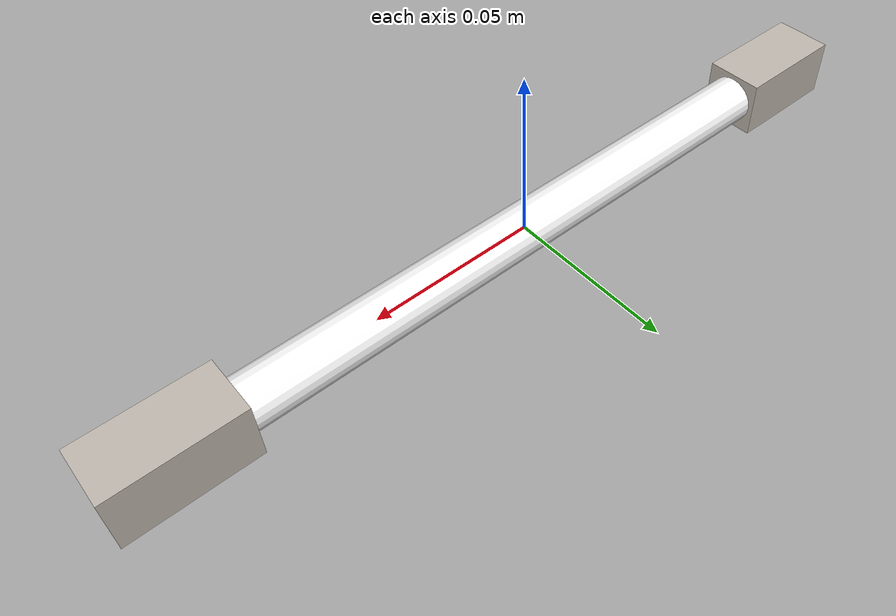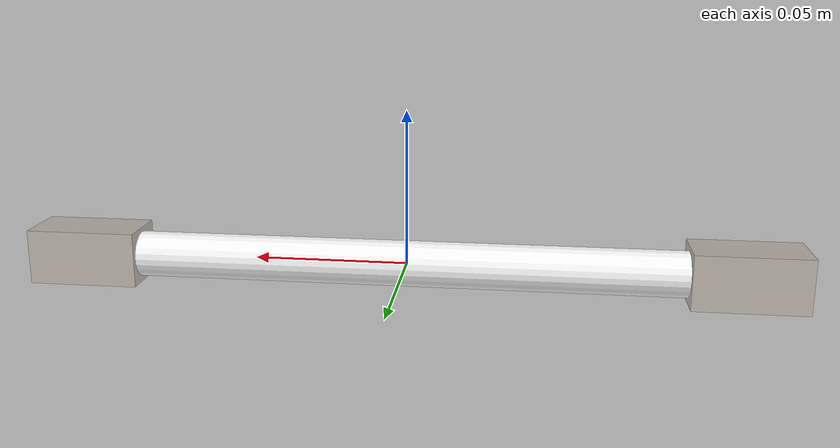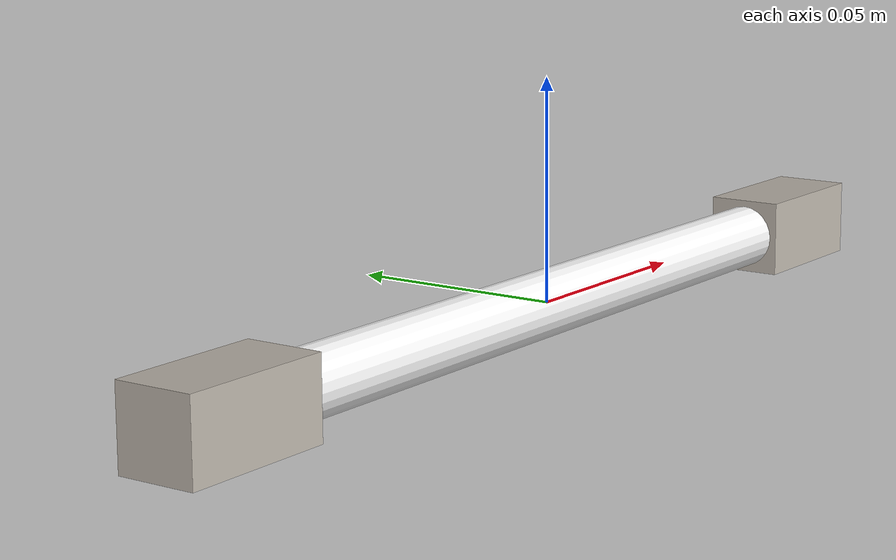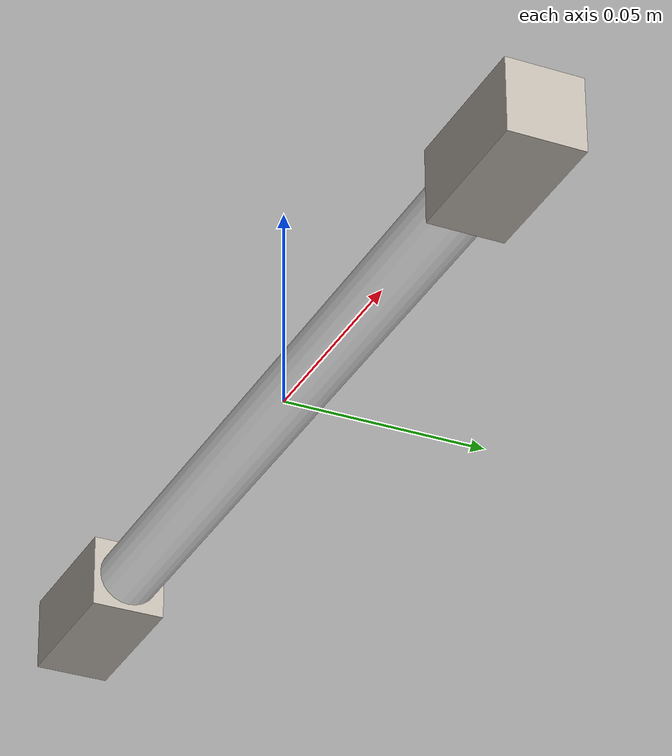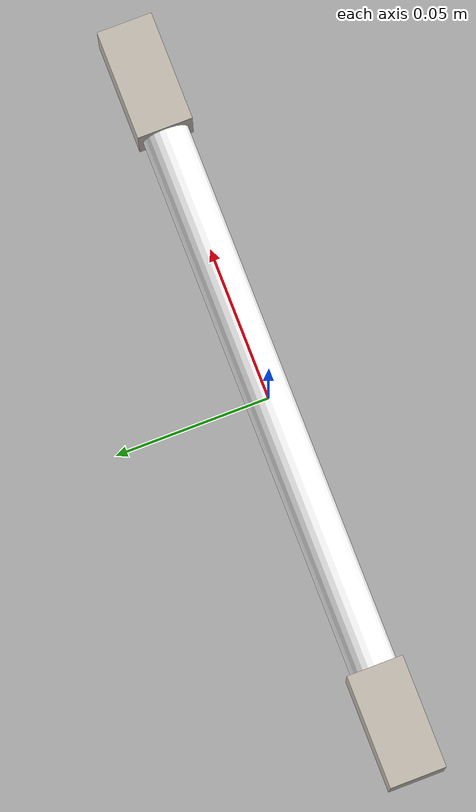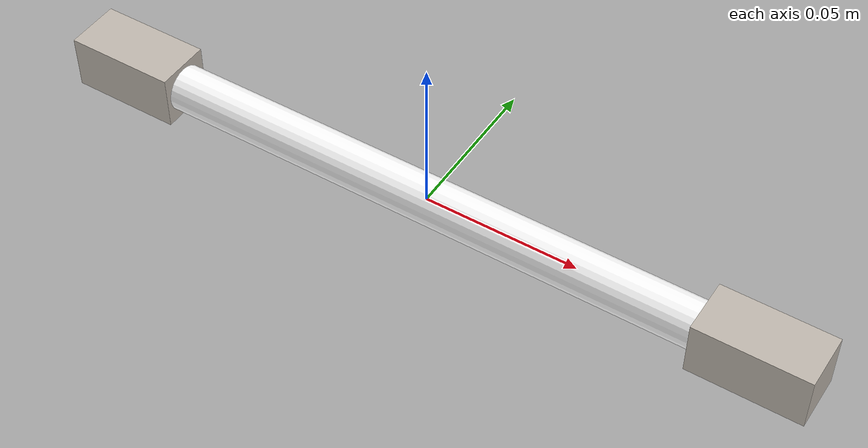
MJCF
<mujoco model="aruco_pen250_tracking">
  <compiler angle="degree" texturedir="../textures" />
  <asset>
    <material name="white" rgba="1 1 1 1" specular="0" />
    <texture name="bottom_texture" type="cube" fileright="bottom_right.png" fileleft="bottom_left.png" fileup="bottom_up.png" filedown="bottom_down.png" filefront="white.png" fileback="bottom_back.png" />
    <material name="bottom_material" texture="bottom_texture" texuniform="false" specular="0" />
    <texture name="top_texture" type="cube" fileright="top_right.png" fileleft="top_left.png" fileup="top_up.png" filedown="top_down.png" filefront="top_front.png" fileback="white.png" />
    <material name="top_material" texture="top_texture" texuniform="false" specular="0" />
  </asset>
  <worldbody>
    <body name="cube" pos="0 0 0">
      <geom name="cube" type="cylinder" fromto="-.089 0 0 .089 0 0" size=".00745" material="white" group="2" contype="1" conaffinity="2" density="469.05012453696503" />
      <geom name="A_bottom" type="box" pos="-0.107 0 0" size=".009 .009 .018" quat=".7071067811865476 0 .7071067811865476 0" material="bottom_material" group="2" contype="1" conaffinity="2" density="469.05012453696503" />
      <geom name="A_top" type="box" pos="0.107 0 0" size=".009 .009 .018" quat=".7071067811865476 0 .7071067811865476 0" material="top_material" group="2" contype="1" conaffinity="2" density="469.05012453696503" />
      <freejoint name="cube_freejoint" />
      <site name="cube_center" pos="0 0 0" group="4" />
    </body>
  </worldbody>
</mujoco>
